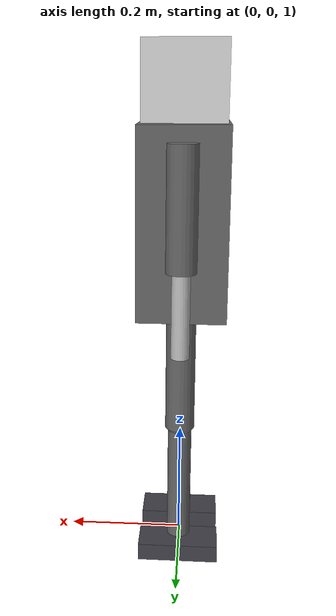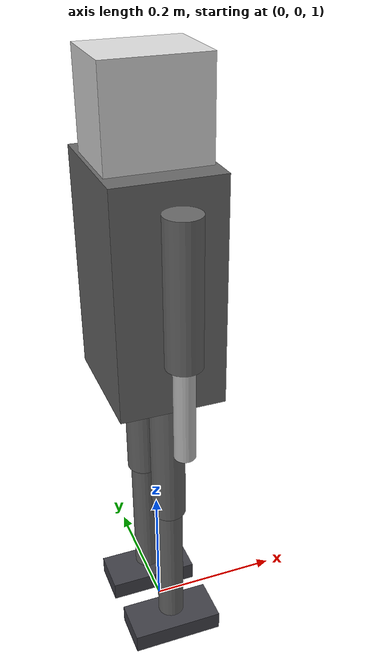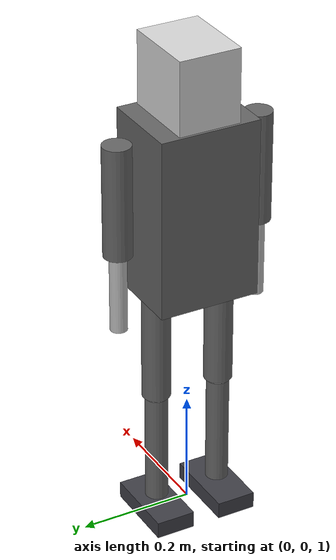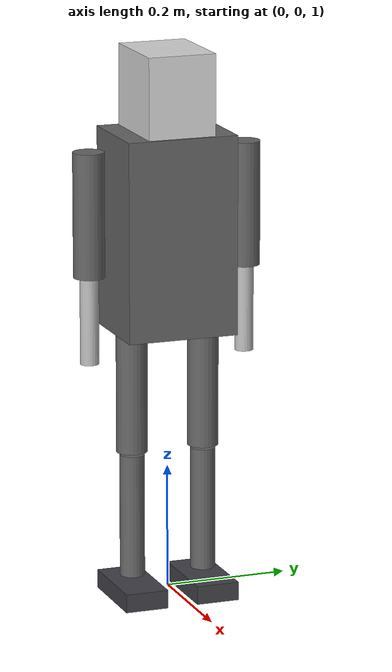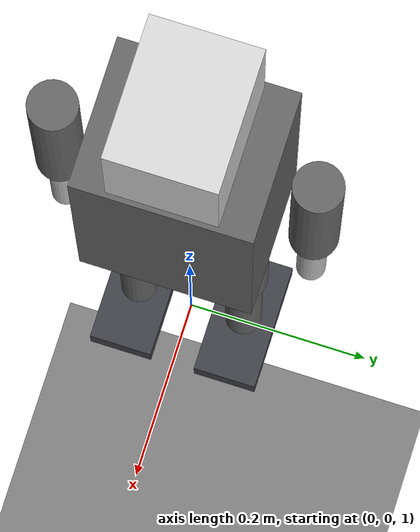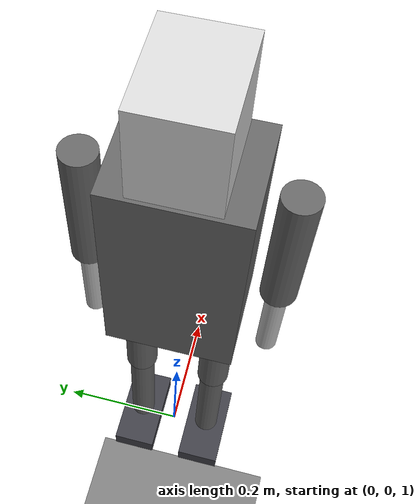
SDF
<?xml version="1.0"?>
<sdf version="1.9">
  <world name="humanoid_world">

    <physics name="1ms" type="ignored">
      <max_step_size>0.001</max_step_size>
      <real_time_factor>1.0</real_time_factor>
    </physics>

    <plugin filename="gz-sim-physics-system" name="gz::sim::systems::Physics"/>
    <plugin filename="gz-sim-sensors-system" name="gz::sim::systems::Sensors">
      <render_engine>ogre2</render_engine>
    </plugin>
    <plugin filename="gz-sim-scene-broadcaster-system" name="gz::sim::systems::SceneBroadcaster"/>
    <plugin filename="gz-sim-user-commands-system" name="gz::sim::systems::UserCommands"/>
    <plugin filename="gz-sim-imu-system" name="gz::sim::systems::Imu"/>

    <light type="directional" name="sun">
      <cast_shadows>true</cast_shadows>
      <pose>0 0 10 0 0 0</pose>
      <diffuse>0.8 0.8 0.8 1</diffuse>
      <specular>0.2 0.2 0.2 1</specular>
    </light>

    <model name="ground_plane">
      <static>true</static>
      <link name="link">
        <collision name="collision">
          <geometry><plane><normal>0 0 1</normal></plane></geometry>
        </collision>
        <visual name="visual">
        <geometry><plane><normal>0 0 1</normal><size>100 100</size></plane></geometry>
        <material>
          <ambient>0.5 0.5 0.5 1</ambient>
          <diffuse>0.5 0.5 0.5 1</diffuse>
          <specular>0.1 0.1 0.1 1</specular>
        </material>
      </visual>
      </link>
    </model>

    <include>
      <uri>model://humanoid</uri>
      <pose>0 0 0.8 0 0 0</pose>
    </include>

  </world>
</sdf>

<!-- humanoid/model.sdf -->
<sdf version="1.9">
  <model name="humanoid">
    <static>false</static>

    <!-- TORSO -->
    <link name="torso">
      <pose>0 0 0.785 0 0 0</pose>
      <inertial>
        <mass>3.0</mass>
        <inertia>
          <ixx>0.05</ixx><iyy>0.05</iyy><izz>0.02</izz>
          <ixy>0</ixy><ixz>0</ixz><iyz>0</iyz>
        </inertia>
      </inertial>
      <collision name="torso_col">
        <geometry><box><size>0.15 0.18 0.32</size></box></geometry>
      </collision>
      <visual name="torso_vis">
        <geometry><box><size>0.15 0.18 0.32</size></box></geometry>
        <material>
          <ambient>0.4 0.4 0.4 1</ambient>
          <diffuse>0.4 0.4 0.4 1</diffuse>
        </material>
      </visual>
      <sensor name="imu" type="imu">
        <always_on>true</always_on>
        <update_rate>100</update_rate>
      </sensor>
    </link>

    <!-- HEAD -->
    <link name="head">
      <pose>0 0 1.00 0 0 0</pose>
      <inertial>
        <mass>0.3</mass>
        <inertia>
          <ixx>0.001</ixx><iyy>0.001</iyy><izz>0.001</izz>
          <ixy>0</ixy><ixz>0</ixz><iyz>0</iyz>
        </inertia>
      </inertial>
      <collision name="head_col">
        <geometry><box><size>0.14 0.11 0.15</size></box></geometry>
      </collision>
      <visual name="head_vis">
        <geometry><box><size>0.14 0.11 0.15</size></box></geometry>
        <material>
          <ambient>0.85 0.85 0.85 1</ambient>
          <diffuse>0.85 0.85 0.85 1</diffuse>
        </material>
      </visual>
    </link>

    <joint name="torso_head" type="fixed">
      <parent>torso</parent>
      <child>head</child>
    </joint>

    <!-- LEFT UPPER ARM -->
    <link name="l_upper_arm">
      <pose>0 0.13 0.82 0 0 0</pose>
      <inertial>
        <mass>0.2</mass>
        <inertia>
          <ixx>0.001</ixx><iyy>0.001</iyy><izz>0.0001</izz>
          <ixy>0</ixy><ixz>0</ixz><iyz>0</iyz>
        </inertia>
      </inertial>
      <collision name="c">
        <geometry><cylinder><radius>0.025</radius><length>0.20</length></cylinder></geometry>
      </collision>
      <visual name="v">
        <geometry><cylinder><radius>0.025</radius><length>0.20</length></cylinder></geometry>
        <material>
          <ambient>0.4 0.4 0.4 1</ambient>
          <diffuse>0.4 0.4 0.4 1</diffuse>
        </material>
      </visual>
    </link>

    <joint name="l_shoulder" type="fixed">
      <parent>torso</parent>
      <child>l_upper_arm</child>
    </joint>

    <!-- LEFT FOREARM -->
    <link name="l_forearm">
      <pose>0 0.13 0.65 0 0 0</pose>
      <inertial>
        <mass>0.15</mass>
        <inertia>
          <ixx>0.0005</ixx><iyy>0.0005</iyy><izz>0.0001</izz>
          <ixy>0</ixy><ixz>0</ixz><iyz>0</iyz>
        </inertia>
      </inertial>
      <collision name="c">
        <geometry><cylinder><radius>0.015</radius><length>0.14</length></cylinder></geometry>
      </collision>
      <visual name="v">
        <geometry><cylinder><radius>0.015</radius><length>0.14</length></cylinder></geometry>
        <material>
          <ambient>0.75 0.75 0.75 1</ambient>
          <diffuse>0.75 0.75 0.75 1</diffuse>
        </material>
      </visual>
    </link>

    <joint name="l_elbow" type="fixed">
      <parent>l_upper_arm</parent>
      <child>l_forearm</child>
    </joint>

    <!-- RIGHT UPPER ARM -->
    <link name="r_upper_arm">
      <pose>0 -0.13 0.82 0 0 0</pose>
      <inertial>
        <mass>0.2</mass>
        <inertia>
          <ixx>0.001</ixx><iyy>0.001</iyy><izz>0.0001</izz>
          <ixy>0</ixy><ixz>0</ixz><iyz>0</iyz>
        </inertia>
      </inertial>
      <collision name="c">
        <geometry><cylinder><radius>0.025</radius><length>0.20</length></cylinder></geometry>
      </collision>
      <visual name="v">
        <geometry><cylinder><radius>0.025</radius><length>0.20</length></cylinder></geometry>
        <material>
          <ambient>0.4 0.4 0.4 1</ambient>
          <diffuse>0.4 0.4 0.4 1</diffuse>
        </material>
      </visual>
    </link>

    <joint name="r_shoulder" type="fixed">
      <parent>torso</parent>
      <child>r_upper_arm</child>
    </joint>

    <!-- RIGHT FOREARM -->
    <link name="r_forearm">
      <pose>0 -0.13 0.65 0 0 0</pose>
      <inertial>
        <mass>0.15</mass>
        <inertia>
          <ixx>0.0005</ixx><iyy>0.0005</iyy><izz>0.0001</izz>
          <ixy>0</ixy><ixz>0</ixz><iyz>0</iyz>
        </inertia>
      </inertial>
      <collision name="c">
        <geometry><cylinder><radius>0.015</radius><length>0.14</length></cylinder></geometry>
      </collision>
      <visual name="v">
        <geometry><cylinder><radius>0.015</radius><length>0.14</length></cylinder></geometry>
        <material>
          <ambient>0.75 0.75 0.75 1</ambient>
          <diffuse>0.75 0.75 0.75 1</diffuse>
        </material>
      </visual>
    </link>

    <joint name="r_elbow" type="fixed">
      <parent>r_upper_arm</parent>
      <child>r_forearm</child>
    </joint>

    <!-- LEFT THIGH -->
    <link name="l_thigh">
      <pose>0 0.06 0.53 0 0 0</pose>
      <inertial>
        <mass>0.5</mass>
        <inertia>
          <ixx>0.004</ixx><iyy>0.004</iyy><izz>0.001</izz>
          <ixy>0</ixy><ixz>0</ixz><iyz>0</iyz>
        </inertia>
      </inertial>
      <collision name="l_thigh_col">
        <geometry><cylinder><radius>0.025</radius><length>0.20</length></cylinder></geometry>
      </collision>
      <visual name="l_thigh_vis">
        <geometry><cylinder><radius>0.025</radius><length>0.20</length></cylinder></geometry>
        <material>
          <ambient>0.4 0.4 0.4 1</ambient>
          <diffuse>0.4 0.4 0.4 1</diffuse>
        </material>
      </visual>
    </link>

    <joint name="l_hip_pitch" type="revolute">
      <parent>torso</parent>
      <child>l_thigh</child>
      <axis>
        <xyz>0 1 0</xyz>
        <limit><lower>-1.57</lower><upper>1.57</upper></limit>
        <dynamics><damping>5.0</damping><friction>0.5</friction></dynamics>
      </axis>
    </joint>

    <!-- LEFT SHIN -->
    <link name="l_shin">
      <pose>0 0.06 0.325 0 0 0</pose>
      <inertial>
        <mass>0.3</mass>
        <inertia>
          <ixx>0.003</ixx><iyy>0.003</iyy><izz>0.001</izz>
          <ixy>0</ixy><ixz>0</ixz><iyz>0</iyz>
        </inertia>
      </inertial>
      <collision name="l_shin_col">
        <geometry><cylinder><radius>0.020</radius><length>0.20</length></cylinder></geometry>
      </collision>
      <visual name="l_shin_vis">
        <geometry><cylinder><radius>0.020</radius><length>0.20</length></cylinder></geometry>
        <material>
          <ambient>0.4 0.4 0.4 1</ambient>
          <diffuse>0.4 0.4 0.4 1</diffuse>
        </material>
      </visual>
    </link>

    <joint name="l_knee" type="revolute">
      <parent>l_thigh</parent>
      <child>l_shin</child>
      <axis>
        <xyz>0 1 0</xyz>
        <limit><lower>0</lower><upper>2.6</upper></limit>
        <dynamics><damping>5.0</damping><friction>0.5</friction></dynamics>
      </axis>
    </joint>

    <!-- LEFT FOOT -->
    <link name="l_foot">
      <pose>0 0.06 0.20 0 0 0</pose>
      <inertial>
        <mass>0.2</mass>
        <inertia>
          <ixx>0.001</ixx><iyy>0.001</iyy><izz>0.001</izz>
          <ixy>0</ixy><ixz>0</ixz><iyz>0</iyz>
        </inertia>
      </inertial>
      <collision name="l_foot_col">
        <geometry><box><size>0.14 0.07 0.03</size></box></geometry>
      </collision>
      <visual name="l_foot_vis">
        <geometry><box><size>0.14 0.07 0.03</size></box></geometry>
        <material>
          <ambient>0.25 0.25 0.28 1</ambient>
          <diffuse>0.25 0.25 0.28 1</diffuse>
        </material>
      </visual>
    </link>

    <joint name="l_ankle" type="revolute">
      <parent>l_shin</parent>
      <child>l_foot</child>
      <axis>
        <xyz>0 1 0</xyz>
        <limit><lower>-0.7</lower><upper>0.7</upper></limit>
        <dynamics><damping>2.0</damping><friction>0.2</friction></dynamics>
      </axis>
    </joint>

    <!-- RIGHT THIGH -->
    <link name="r_thigh">
      <pose>0 -0.06 0.53 0 0 0</pose>
      <inertial>
        <mass>0.5</mass>
        <inertia>
          <ixx>0.004</ixx><iyy>0.004</iyy><izz>0.001</izz>
          <ixy>0</ixy><ixz>0</ixz><iyz>0</iyz>
        </inertia>
      </inertial>
      <collision name="r_thigh_col">
        <geometry><cylinder><radius>0.025</radius><length>0.20</length></cylinder></geometry>
      </collision>
      <visual name="r_thigh_vis">
        <geometry><cylinder><radius>0.025</radius><length>0.20</length></cylinder></geometry>
        <material>
          <ambient>0.4 0.4 0.4 1</ambient>
          <diffuse>0.4 0.4 0.4 1</diffuse>
        </material>
      </visual>
    </link>

    <joint name="r_hip_pitch" type="revolute">
      <parent>torso</parent>
      <child>r_thigh</child>
      <axis>
        <xyz>0 1 0</xyz>
        <limit><lower>-1.57</lower><upper>1.57</upper></limit>
        <dynamics><damping>5.0</damping><friction>0.5</friction></dynamics>
      </axis>
    </joint>

    <!-- RIGHT SHIN -->
    <link name="r_shin">
      <pose>0 -0.06 0.325 0 0 0</pose>
      <inertial>
        <mass>0.3</mass>
        <inertia>
          <ixx>0.003</ixx><iyy>0.003</iyy><izz>0.001</izz>
          <ixy>0</ixy><ixz>0</ixz><iyz>0</iyz>
        </inertia>
      </inertial>
      <collision name="r_shin_col">
        <geometry><cylinder><radius>0.020</radius><length>0.20</length></cylinder></geometry>
      </collision>
      <visual name="r_shin_vis">
        <geometry><cylinder><radius>0.020</radius><length>0.20</length></cylinder></geometry>
        <material>
          <ambient>0.4 0.4 0.4 1</ambient>
          <diffuse>0.4 0.4 0.4 1</diffuse>
        </material>
      </visual>
    </link>

    <joint name="r_knee" type="revolute">
      <parent>r_thigh</parent>
      <child>r_shin</child>
      <axis>
        <xyz>0 1 0</xyz>
        <limit><lower>0</lower><upper>2.6</upper></limit>
        <dynamics><damping>5.0</damping><friction>0.5</friction></dynamics>
      </axis>
    </joint>

    <!-- RIGHT FOOT -->
    <link name="r_foot">
      <pose>0 -0.06 0.20 0 0 0</pose>
      <inertial>
        <mass>0.2</mass>
        <inertia>
          <ixx>0.001</ixx><iyy>0.001</iyy><izz>0.001</izz>
          <ixy>0</ixy><ixz>0</ixz><iyz>0</iyz>
        </inertia>
      </inertial>
      <collision name="r_foot_col">
        <geometry><box><size>0.14 0.07 0.03</size></box></geometry>
      </collision>
      <visual name="r_foot_vis">
        <geometry><box><size>0.14 0.07 0.03</size></box></geometry>
        <material>
          <ambient>0.25 0.25 0.28 1</ambient>
          <diffuse>0.25 0.25 0.28 1</diffuse>
        </material>
      </visual>
    </link>

    <joint name="r_ankle" type="revolute">
      <parent>r_shin</parent>
      <child>r_foot</child>
      <axis>
        <xyz>0 1 0</xyz>
        <limit><lower>-0.7</lower><upper>0.7</upper></limit>
        <dynamics><damping>2.0</damping><friction>0.2</friction></dynamics>
      </axis>
    </joint>

    <!-- ARDUPILOT PLUGIN -->
    <plugin name="ArduPilotPlugin" filename="libArduPilotPlugin.so">
      <fdm_addr>127.0.0.1</fdm_addr>
      <fdm_port_in>9002</fdm_port_in>
      <fdm_port_out>9003</fdm_port_out>
      <connectionTimeoutMaxCount>5</connectionTimeoutMaxCount>
      <modelXYZToAirplaneXForwardZDown degrees="true">0 0 0 180 0 0</modelXYZToAirplaneXForwardZDown>
      <gazeboXYZToNED degrees="true">0 0 0 180 0 90</gazeboXYZToNED>
      <imuName>torso::imu</imuName>
      <control channel="0">
        <jointName>l_hip_pitch</jointName>
        <type>POSITION</type>
        <p_gain>10</p_gain>
        <i_gain>0</i_gain>
        <d_gain>0.1</d_gain>
        <servo_min>1000</servo_min>
        <servo_max>2000</servo_max>
        <multiplier>1.571</multiplier>
        <offset>-0.5</offset>
      </control>
      <control channel="1">
        <jointName>l_knee</jointName>
        <type>POSITION</type>
        <p_gain>10</p_gain>
        <i_gain>0</i_gain>
        <d_gain>0.1</d_gain>
        <servo_min>1000</servo_min>
        <servo_max>2000</servo_max>
        <multiplier>2.618</multiplier>
        <offset>-0.5</offset>
      </control>
      <control channel="2">
        <jointName>l_ankle</jointName>
        <type>POSITION</type>
        <p_gain>10</p_gain>
        <i_gain>0</i_gain>
        <d_gain>0.1</d_gain>
        <servo_min>1000</servo_min>
        <servo_max>2000</servo_max>
        <multiplier>1.4</multiplier>
        <offset>-0.5</offset>
      </control>
      <control channel="3">
        <jointName>r_hip_pitch</jointName>
        <type>POSITION</type>
        <p_gain>10</p_gain>
        <i_gain>0</i_gain>
        <d_gain>0.1</d_gain>
        <servo_min>1000</servo_min>
        <servo_max>2000</servo_max>
        <multiplier>1.571</multiplier>
        <offset>-0.5</offset>
      </control>
      <control channel="4">
        <jointName>r_knee</jointName>
        <type>POSITION</type>
        <p_gain>10</p_gain>
        <i_gain>0</i_gain>
        <d_gain>0.1</d_gain>
        <servo_min>1000</servo_min>
        <servo_max>2000</servo_max>
        <multiplier>2.618</multiplier>
        <offset>-0.5</offset>
      </control>
      <control channel="5">
        <jointName>r_ankle</jointName>
        <type>POSITION</type>
        <p_gain>10</p_gain>
        <i_gain>0</i_gain>
        <d_gain>0.1</d_gain>
        <servo_min>1000</servo_min>
        <servo_max>2000</servo_max>
        <multiplier>1.4</multiplier>
        <offset>-0.5</offset>
      </control>
    </plugin>

  </model>
</sdf>
